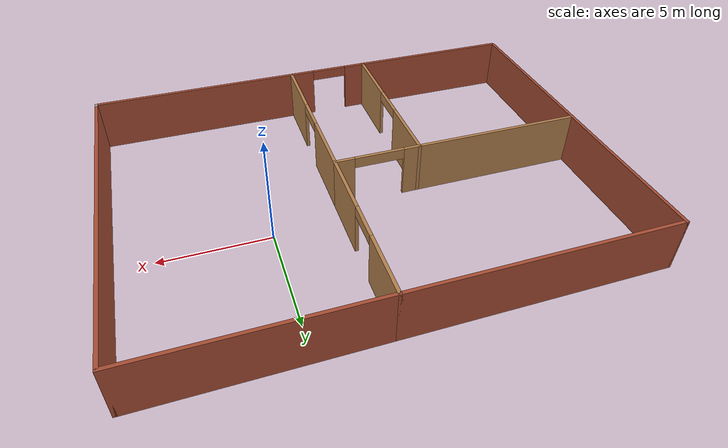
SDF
<?xml version='1.0'?>
<sdf version='1.7'>
  <model name='HouseWalls'>
    <pose>-4.14791 -1.35082 0 0 -0 0</pose>
    <link name='Wall_12'>
      <collision name='Wall_12_Collision'>
        <geometry>
          <box>
            <size>16 0.15 2.5</size>
          </box>
        </geometry>
        <pose>0 0 1.25 0 -0 0</pose>
      </collision>
      <visual name='Wall_12_Visual'>
        <pose>0 0 1.25 0 -0 0</pose>
        <geometry>
          <box>
            <size>16 0.15 2.5</size>
          </box>
        </geometry>
        <material>
          <script>
            <uri>file://media/materials/scripts/gazebo.material</uri>
            <name>Gazebo/Bricks</name>
          </script>
          <ambient>1 1 1 1</ambient>
        </material>
        <meta>
          <layer>0</layer>
        </meta>
      </visual>
      <pose>-10.85 0.05 0 0 -0 -1.5708</pose>
    </link>
    <link name='Wall_14'>
      <collision name='Wall_14_Collision'>
        <geometry>
          <box>
            <size>8 0.15 2.5</size>
          </box>
        </geometry>
        <pose>0 0 1.25 0 -0 0</pose>
      </collision>
      <visual name='Wall_14_Visual'>
        <pose>0 0 1.25 0 -0 0</pose>
        <geometry>
          <box>
            <size>8 0.15 2.5</size>
          </box>
        </geometry>
        <material>
          <script>
            <uri>file://media/materials/scripts/gazebo.material</uri>
            <name>Gazebo/Bricks</name>
          </script>
          <ambient>1 1 1 1</ambient>
        </material>
        <meta>
          <layer>0</layer>
        </meta>
      </visual>
      <pose>-6.88455 -7.975 0 0 -0 3.14159</pose>
    </link>
    <link name='Wall_17'>
      <pose>-4.925 0.125 0 0 -0 3.14159</pose>
      <visual name='Wall_17_Visual_0'>
        <pose>-5.51068 0 1.25 0 -0 0</pose>
        <geometry>
          <box>
            <size>0.978635 0.15 2.5</size>
          </box>
        </geometry>
        <material>
          <script>
            <uri>file://media/materials/scripts/gazebo.material</uri>
            <name>Gazebo/Wood</name>
          </script>
          <ambient>1 1 1 1</ambient>
        </material>
        <meta>
          <layer>0</layer>
        </meta>
      </visual>
      <collision name='Wall_17_Collision_0'>
        <geometry>
          <box>
            <size>0.978635 0.15 2.5</size>
          </box>
        </geometry>
        <pose>-5.51068 0 1.25 0 -0 0</pose>
      </collision>
      <visual name='Wall_17_Visual_1'>
        <pose>1.64329 0 1.25 0 -0 0</pose>
        <geometry>
          <box>
            <size>8.71341 0.15 2.5</size>
          </box>
        </geometry>
        <material>
          <script>
            <uri>file://media/materials/scripts/gazebo.material</uri>
            <name>Gazebo/Wood</name>
          </script>
          <ambient>1 1 1 1</ambient>
        </material>
        <meta>
          <layer>0</layer>
        </meta>
      </visual>
      <collision name='Wall_17_Collision_1'>
        <geometry>
          <box>
            <size>8.71341 0.15 2.5</size>
          </box>
        </geometry>
        <pose>1.64329 0 1.25 0 -0 0</pose>
      </collision>
      <visual name='Wall_17_Visual_2'>
        <pose>-3.86739 0 2.25 0 -0 0</pose>
        <geometry>
          <box>
            <size>2.30795 0.15 0.5</size>
          </box>
        </geometry>
        <material>
          <script>
            <uri>file://media/materials/scripts/gazebo.material</uri>
            <name>Gazebo/Wood</name>
          </script>
          <ambient>1 1 1 1</ambient>
        </material>
        <meta>
          <layer>0</layer>
        </meta>
      </visual>
      <collision name='Wall_17_Collision_2'>
        <geometry>
          <box>
            <size>2.30795 0.15 0.5</size>
          </box>
        </geometry>
        <pose>-3.86739 0 2.25 0 -0 0</pose>
      </collision>
    </link>
    <link name='Wall_19'>
      <pose>-2.95954 -3.925 0 0 -0 1.5708</pose>
      <visual name='Wall_19_Visual_0'>
        <pose>-2.49755 0 1.25 0 -0 0</pose>
        <geometry>
          <box>
            <size>3.25491 0.15 2.5</size>
          </box>
        </geometry>
        <material>
          <script>
            <uri>file://media/materials/scripts/gazebo.material</uri>
            <name>Gazebo/Wood</name>
          </script>
          <ambient>1 1 1 1</ambient>
        </material>
        <meta>
          <layer>0</layer>
        </meta>
      </visual>
      <collision name='Wall_19_Collision_0'>
        <geometry>
          <box>
            <size>3.25491 0.15 2.5</size>
          </box>
        </geometry>
        <pose>-2.49755 0 1.25 0 -0 0</pose>
      </collision>
      <visual name='Wall_19_Visual_1'>
        <pose>2.51471 0 1.25 0 -0 0</pose>
        <geometry>
          <box>
            <size>3.22059 0.15 2.5</size>
          </box>
        </geometry>
        <material>
          <script>
            <uri>file://media/materials/scripts/gazebo.material</uri>
            <name>Gazebo/Wood</name>
          </script>
          <ambient>1 1 1 1</ambient>
        </material>
        <meta>
          <layer>0</layer>
        </meta>
      </visual>
      <collision name='Wall_19_Collision_1'>
        <geometry>
          <box>
            <size>3.22059 0.15 2.5</size>
          </box>
        </geometry>
        <pose>2.51471 0 1.25 0 -0 0</pose>
      </collision>
      <visual name='Wall_19_Visual_2'>
        <pose>0.017162 0 2.25 0 -0 0</pose>
        <geometry>
          <box>
            <size>1.7745 0.15 0.5</size>
          </box>
        </geometry>
        <material>
          <script>
            <uri>file://media/materials/scripts/gazebo.material</uri>
            <name>Gazebo/Wood</name>
          </script>
          <ambient>1 1 1 1</ambient>
        </material>
        <meta>
          <layer>0</layer>
        </meta>
      </visual>
      <collision name='Wall_19_Collision_2'>
        <geometry>
          <box>
            <size>1.7745 0.15 0.5</size>
          </box>
        </geometry>
        <pose>0.017162 0 2.25 0 -0 0</pose>
      </collision>
    </link>
    <link name='Wall_22'>
      <pose>-1.03454 -7.975 0 0 -0 0</pose>
      <visual name='Wall_22_Visual_0'>
        <pose>-1.4444 0 1.25 0 -0 0</pose>
        <geometry>
          <box>
            <size>1.11121 0.15 2.5</size>
          </box>
        </geometry>
        <material>
          <script>
            <uri>file://media/materials/scripts/gazebo.material</uri>
            <name>Gazebo/Bricks</name>
          </script>
          <ambient>1 1 1 1</ambient>
        </material>
        <meta>
          <layer>0</layer>
        </meta>
      </visual>
      <collision name='Wall_22_Collision_0'>
        <geometry>
          <box>
            <size>1.11121 0.15 2.5</size>
          </box>
        </geometry>
        <pose>-1.4444 0 1.25 0 -0 0</pose>
      </collision>
      <visual name='Wall_22_Visual_1'>
        <pose>1.4356 0 1.25 0 -0 0</pose>
        <geometry>
          <box>
            <size>1.12879 0.15 2.5</size>
          </box>
        </geometry>
        <material>
          <script>
            <uri>file://media/materials/scripts/gazebo.material</uri>
            <name>Gazebo/Bricks</name>
          </script>
          <ambient>1 1 1 1</ambient>
        </material>
        <meta>
          <layer>0</layer>
        </meta>
      </visual>
      <collision name='Wall_22_Collision_1'>
        <geometry>
          <box>
            <size>1.12879 0.15 2.5</size>
          </box>
        </geometry>
        <pose>1.4356 0 1.25 0 -0 0</pose>
      </collision>
      <visual name='Wall_22_Visual_2'>
        <pose>-0.008793 0 2.25 0 -0 0</pose>
        <geometry>
          <box>
            <size>1.76 0.15 0.5</size>
          </box>
        </geometry>
        <material>
          <script>
            <uri>file://media/materials/scripts/gazebo.material</uri>
            <name>Gazebo/Bricks</name>
          </script>
          <ambient>1 1 1 1</ambient>
        </material>
        <meta>
          <layer>0</layer>
        </meta>
      </visual>
      <collision name='Wall_22_Collision_2'>
        <geometry>
          <box>
            <size>1.76 0.15 0.5</size>
          </box>
        </geometry>
        <pose>-0.008793 0 2.25 0 -0 0</pose>
      </collision>
    </link>
    <link name='Wall_24'>
      <pose>1 -3.925 0 0 -0 -1.5708</pose>
      <visual name='Wall_24_Visual_0'>
        <pose>-2.49284 0 1.25 0 -0 0</pose>
        <geometry>
          <box>
            <size>3.26431 0.15 2.5</size>
          </box>
        </geometry>
        <material>
          <script>
            <uri>file://media/materials/scripts/gazebo.material</uri>
            <name>Gazebo/Wood</name>
          </script>
          <ambient>1 1 1 1</ambient>
        </material>
        <meta>
          <layer>0</layer>
        </meta>
      </visual>
      <collision name='Wall_24_Collision_0'>
        <geometry>
          <box>
            <size>3.26431 0.15 2.5</size>
          </box>
        </geometry>
        <pose>-2.49284 0 1.25 0 -0 0</pose>
      </collision>
      <visual name='Wall_24_Visual_1'>
        <pose>2.51941 0 1.25 0 -0 0</pose>
        <geometry>
          <box>
            <size>3.21119 0.15 2.5</size>
          </box>
        </geometry>
        <material>
          <script>
            <uri>file://media/materials/scripts/gazebo.material</uri>
            <name>Gazebo/Wood</name>
          </script>
          <ambient>1 1 1 1</ambient>
        </material>
        <meta>
          <layer>0</layer>
        </meta>
      </visual>
      <collision name='Wall_24_Collision_1'>
        <geometry>
          <box>
            <size>3.21119 0.15 2.5</size>
          </box>
        </geometry>
        <pose>2.51941 0 1.25 0 -0 0</pose>
      </collision>
      <visual name='Wall_24_Visual_2'>
        <pose>0.026563 0 2.25 0 -0 0</pose>
        <geometry>
          <box>
            <size>1.7745 0.15 0.5</size>
          </box>
        </geometry>
        <material>
          <script>
            <uri>file://media/materials/scripts/gazebo.material</uri>
            <name>Gazebo/Wood</name>
          </script>
          <ambient>1 1 1 1</ambient>
        </material>
        <meta>
          <layer>0</layer>
        </meta>
      </visual>
      <collision name='Wall_24_Collision_2'>
        <geometry>
          <box>
            <size>1.7745 0.15 0.5</size>
          </box>
        </geometry>
        <pose>0.026563 0 2.25 0 -0 0</pose>
      </collision>
    </link>
    <link name='Wall_26'>
      <collision name='Wall_26_Collision'>
        <geometry>
          <box>
            <size>10 0.15 2.5</size>
          </box>
        </geometry>
        <pose>0 0 1.25 0 -0 0</pose>
      </collision>
      <visual name='Wall_26_Visual'>
        <pose>0 0 1.25 0 -0 0</pose>
        <geometry>
          <box>
            <size>10 0.15 2.5</size>
          </box>
        </geometry>
        <material>
          <script>
            <uri>file://media/materials/scripts/gazebo.material</uri>
            <name>Gazebo/Bricks</name>
          </script>
          <ambient>1 1 1 1</ambient>
        </material>
        <meta>
          <layer>0</layer>
        </meta>
      </visual>
      <pose>5.925 7.975 0 0 -0 0</pose>
    </link>
    <link name='Wall_27'>
      <collision name='Wall_27_Collision'>
        <geometry>
          <box>
            <size>16 0.15 2.5</size>
          </box>
        </geometry>
        <pose>0 0 1.25 0 -0 0</pose>
      </collision>
      <visual name='Wall_27_Visual'>
        <pose>0 0 1.25 0 -0 0</pose>
        <geometry>
          <box>
            <size>16 0.15 2.5</size>
          </box>
        </geometry>
        <material>
          <script>
            <uri>file://media/materials/scripts/gazebo.material</uri>
            <name>Gazebo/Bricks</name>
          </script>
          <ambient>1 1 1 1</ambient>
        </material>
        <meta>
          <layer>0</layer>
        </meta>
      </visual>
      <pose>10.85 0.05 0 0 -0 -1.5708</pose>
    </link>
    <link name='Wall_28'>
      <collision name='Wall_28_Collision'>
        <geometry>
          <box>
            <size>0.25 0.15 2.5</size>
          </box>
        </geometry>
        <pose>0 0 1.25 0 -0 0</pose>
      </collision>
      <visual name='Wall_28_Visual'>
        <pose>0 0 1.25 0 -0 0</pose>
        <geometry>
          <box>
            <size>0.25 0.15 2.5</size>
          </box>
        </geometry>
        <material>
          <script>
            <uri>file://media/materials/scripts/gazebo.material</uri>
            <name>Gazebo/Grey</name>
          </script>
          <ambient>1 1 1 1</ambient>
        </material>
        <meta>
          <layer>0</layer>
        </meta>
      </visual>
      <pose>10.85 -7.925 0 0 -0 -1.5708</pose>
    </link>
    <link name='Wall_29'>
      <collision name='Wall_29_Collision'>
        <geometry>
          <box>
            <size>10 0.15 2.5</size>
          </box>
        </geometry>
        <pose>0 0 1.25 0 -0 0</pose>
      </collision>
      <visual name='Wall_29_Visual'>
        <pose>0 0 1.25 0 -0 0</pose>
        <geometry>
          <box>
            <size>10 0.15 2.5</size>
          </box>
        </geometry>
        <material>
          <script>
            <uri>file://media/materials/scripts/gazebo.material</uri>
            <name>Gazebo/Bricks</name>
          </script>
          <ambient>1 1 1 1</ambient>
        </material>
        <meta>
          <layer>0</layer>
        </meta>
      </visual>
      <pose>5.925 -7.975 0 0 -0 3.14159</pose>
    </link>
    <link name='Wall_3'>
      <collision name='Wall_3_Collision'>
        <geometry>
          <box>
            <size>12 0.15 2.5</size>
          </box>
        </geometry>
        <pose>0 0 1.25 0 -0 0</pose>
      </collision>
      <visual name='Wall_3_Visual'>
        <pose>0 0 1.25 0 -0 0</pose>
        <geometry>
          <box>
            <size>12 0.15 2.5</size>
          </box>
        </geometry>
        <material>
          <script>
            <uri>file://media/materials/scripts/gazebo.material</uri>
            <name>Gazebo/Bricks</name>
          </script>
          <ambient>1 1 1 1</ambient>
        </material>
        <meta>
          <layer>0</layer>
        </meta>
      </visual>
      <pose>-4.925 7.975 0 0 -0 0</pose>
    </link>
    <link name='Wall_4'>
      <pose>1 4.05 0 0 -0 -1.5708</pose>
      <visual name='Wall_4_Visual_0'>
        <pose>-2.45945 0 1.25 0 -0 0</pose>
        <geometry>
          <box>
            <size>3.0811 0.15 2.5</size>
          </box>
        </geometry>
        <material>
          <script>
            <uri>file://media/materials/scripts/gazebo.material</uri>
            <name>Gazebo/Wood</name>
          </script>
          <ambient>1 1 1 1</ambient>
        </material>
        <meta>
          <layer>0</layer>
        </meta>
      </visual>
      <collision name='Wall_4_Collision_0'>
        <geometry>
          <box>
            <size>3.0811 0.15 2.5</size>
          </box>
        </geometry>
        <pose>-2.45945 0 1.25 0 -0 0</pose>
      </collision>
      <visual name='Wall_4_Visual_1'>
        <pose>2.41906 0 1.25 0 -0 0</pose>
        <geometry>
          <box>
            <size>3.16188 0.15 2.5</size>
          </box>
        </geometry>
        <material>
          <script>
            <uri>file://media/materials/scripts/gazebo.material</uri>
            <name>Gazebo/Wood</name>
          </script>
          <ambient>1 1 1 1</ambient>
        </material>
        <meta>
          <layer>0</layer>
        </meta>
      </visual>
      <collision name='Wall_4_Collision_1'>
        <geometry>
          <box>
            <size>3.16188 0.15 2.5</size>
          </box>
        </geometry>
        <pose>2.41906 0 1.25 0 -0 0</pose>
      </collision>
      <visual name='Wall_4_Visual_2'>
        <pose>-0.04039 0 2.25 0 -0 0</pose>
        <geometry>
          <box>
            <size>1.75701 0.15 0.5</size>
          </box>
        </geometry>
        <material>
          <script>
            <uri>file://media/materials/scripts/gazebo.material</uri>
            <name>Gazebo/Wood</name>
          </script>
          <ambient>1 1 1 1</ambient>
        </material>
        <meta>
          <layer>0</layer>
        </meta>
      </visual>
      <collision name='Wall_4_Collision_2'>
        <geometry>
          <box>
            <size>1.75701 0.15 0.5</size>
          </box>
        </geometry>
        <pose>-0.04039 0 2.25 0 -0 0</pose>
      </collision>
    </link>
    <static>1</static>
  </model>
</sdf>
